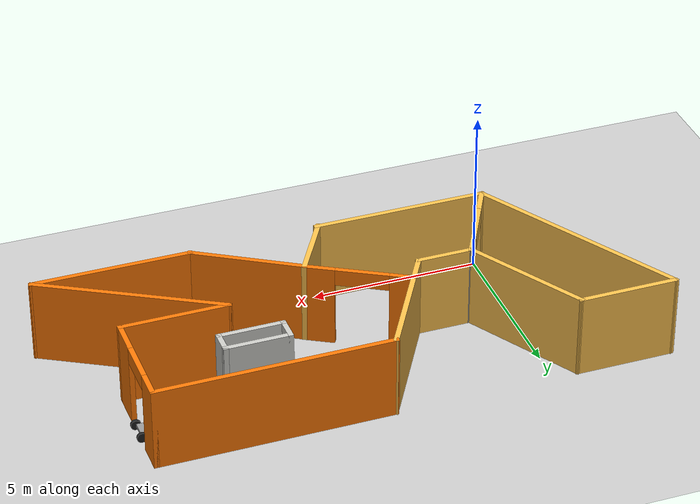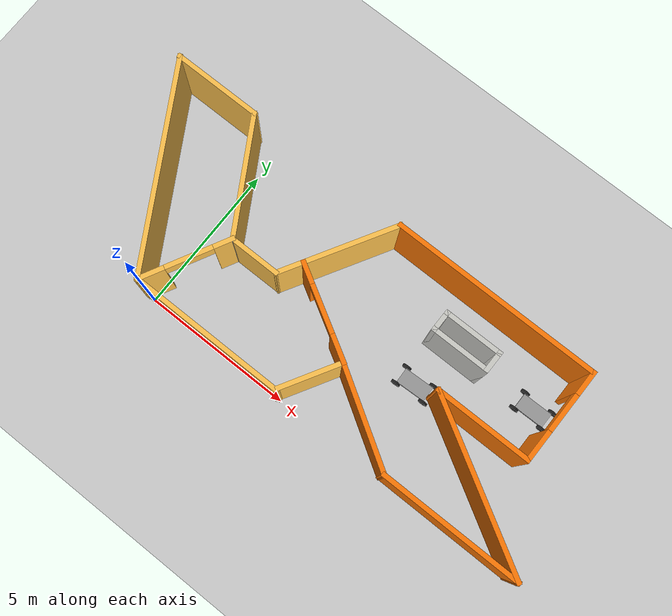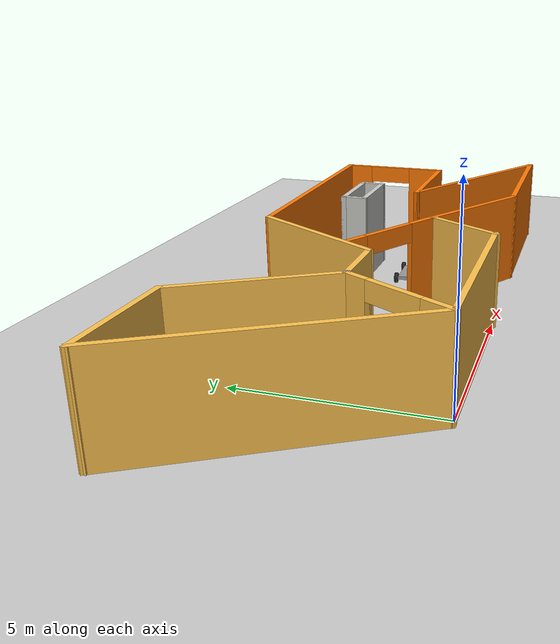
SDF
<sdf version="1.6">
 <world name="default">
  <model name="ground_plane">
   <pose>0 0 0 0 -0 0.3</pose>
   <static>1</static>
   <link name="link">
    <collision name="collision">
     <geometry><plane><normal>0 0 1</normal><size>100 100</size></plane></geometry>
     <surface>
      <contact><collide_bitmask>65535</collide_bitmask></contact>
      <friction><ode><mu>100</mu><mu2>50</mu2></ode></friction>
     </surface>
    </collision>
    <visual name="visual">
     <cast_shadows>0</cast_shadows>
     <geometry><plane><normal>0 0 1</normal><size>100 100</size></plane></geometry>
     <material>
      <script><uri>file://media/materials/scripts/gazebo.material</uri><name>Gazebo/Grey</name></script>
     </material>
    </visual>
   </link>
  </model>
  <model name="model">
   <pose>4.86441 3.63038 0 0 -0 0</pose>
   <link name="Wall_1">
    <collision name="Wall_1_Collision">
     <geometry><box><size>3 0.15 2.5</size></box></geometry>
     <pose>0 0 1.25 0 -0 0</pose>
    </collision>
    <visual name="Wall_1_Visual">
     <pose>0 0 1.25 0 -0 0</pose>
     <geometry><box><size>3 0.15 2.5</size></box></geometry>
     <material>
      <script><uri>file://media/materials/scripts/gazebo.material</uri><name>Gazebo/Grey</name></script>
      <ambient>1 0.764706 0.305882 1</ambient>
     </material>
     <meta><layer>0</layer></meta>
    </visual>
    <pose>-7.02494 2.33089 0 0 -0 0</pose>
   </link>
   <link name="Wall_10">
    <collision name="Wall_10_Collision">
     <geometry><box><size>3.45374 0.15 2.5</size></box></geometry>
     <pose>0 0 1.25 0 -0 0</pose>
    </collision>
    <visual name="Wall_10_Visual">
     <pose>0 0 1.25 0 -0 0</pose>
     <geometry><box><size>3.45374 0.15 2.5</size></box></geometry>
     <material>
      <script><uri>file://media/materials/scripts/gazebo.material</uri><name>Gazebo/Grey</name></script>
      <ambient>0.996078 0.47451 0.0196078 1</ambient>
     </material>
     <meta><layer>0</layer></meta>
    </visual>
    <pose>2.44495 -2.70017 0 0 -0 2.58766</pose>
   </link>
   <link name="Wall_11">
    <collision name="Wall_11_Collision">
     <geometry><box><size>2.25 0.15 2.5</size></box></geometry>
     <pose>0 0 1.25 0 -0 0</pose>
    </collision>
    <visual name="Wall_11_Visual">
     <pose>0 0 1.25 0 -0 0</pose>
     <geometry><box><size>2.25 0.15 2.5</size></box></geometry>
     <material>
      <script><uri>file://media/materials/scripts/gazebo.material</uri><name>Gazebo/Grey</name></script>
      <ambient>1 0.764706 0.305882 1</ambient>
     </material>
     <meta><layer>0</layer></meta>
    </visual>
    <pose>0.5151 -2.72911 0 0 -0 -2.0944</pose>
   </link>
   <link name="Wall_2">
    <collision name="Wall_2_Collision">
     <geometry><box><size>4 0.15 2.5</size></box></geometry>
     <pose>0 0 1.25 0 -0 0</pose>
    </collision>
    <visual name="Wall_2_Visual">
     <pose>0 0 1.25 0 -0 0</pose>
     <geometry><box><size>4 0.15 2.5</size></box></geometry>
     <material>
      <script><uri>file://media/materials/scripts/gazebo.material</uri><name>Gazebo/Grey</name></script>
      <ambient>1 0.764706 0.305882 1</ambient>
     </material>
     <meta><layer>0</layer></meta>
    </visual>
    <pose>-4.63744 0.66379 0 0 -0 -1.0472</pose>
   </link>
   <link name="Wall_20">
    <collision name="Wall_20_Collision">
     <geometry><box><size>6.98788 0.15 2.5</size></box></geometry>
     <pose>0 0 1.25 0 -0 0</pose>
    </collision>
    <visual name="Wall_20_Visual">
     <pose>0 0 1.25 0 -0 0</pose>
     <geometry><box><size>6.98788 0.15 2.5</size></box></geometry>
     <material>
      <script><uri>file://media/materials/scripts/gazebo.material</uri><name>Gazebo/Grey</name></script>
      <ambient>1 0.764706 0.305882 1</ambient>
     </material>
     <meta><layer>0</layer></meta>
    </visual>
    <pose>-6.75459 -0.638107 0 0 -0 -1.05196</pose>
   </link>
   <link name="Wall_21">
    <collision name="Wall_21_Collision">
     <geometry><box><size>5.25 0.15 2.5</size></box></geometry>
     <pose>0 0 1.25 0 -0 0</pose>
    </collision>
    <visual name="Wall_21_Visual">
     <pose>0 0 1.25 0 -0 0</pose>
     <geometry><box><size>5.25 0.15 2.5</size></box></geometry>
     <material>
      <script><uri>file://media/materials/scripts/gazebo.material</uri><name>Gazebo/Grey</name></script>
      <ambient>1 0.764706 0.305882 1</ambient>
     </material>
     <meta><layer>0</layer></meta>
    </visual>
    <pose>-2.49781 -3.6071 0 0 -0 0</pose>
   </link>
   <link name="Wall_23">
    <collision name="Wall_23_Collision">
     <geometry><box><size>2 0.15 2.5</size></box></geometry>
     <pose>0 0 1.25 0 -0 0</pose>
    </collision>
    <visual name="Wall_23_Visual">
     <pose>0 0 1.25 0 -0 0</pose>
     <geometry><box><size>2 0.15 2.5</size></box></geometry>
     <material>
      <script><uri>file://media/materials/scripts/gazebo.material</uri><name>Gazebo/CeilingTiled</name></script>
      <ambient>0.435294 0.796078 0.67451 1</ambient>
     </material>
     <meta><layer>0</layer></meta>
    </visual>
    <pose>3.37989 1.12451 0 0 -0 3.14159</pose>
   </link>
   <link name="Wall_24">
    <collision name="Wall_24_Collision">
     <geometry><box><size>0.75 0.15 2.5</size></box></geometry>
     <pose>0 0 1.25 0 -0 0</pose>
    </collision>
    <visual name="Wall_24_Visual">
     <pose>0 0 1.25 0 -0 0</pose>
     <geometry><box><size>0.75 0.15 2.5</size></box></geometry>
     <material>
      <script><uri>file://media/materials/scripts/gazebo.material</uri><name>Gazebo/CeilingTiled</name></script>
      <ambient>0.435294 0.796078 0.67451 1</ambient>
     </material>
     <meta><layer>0</layer></meta>
    </visual>
    <pose>2.45489 0.824511 0 0 -0 -1.5708</pose>
   </link>
   <link name="Wall_25">
    <collision name="Wall_25_Collision">
     <geometry><box><size>2 0.15 2.5</size></box></geometry>
     <pose>0 0 1.25 0 -0 0</pose>
    </collision>
    <visual name="Wall_25_Visual">
     <pose>0 0 1.25 0 -0 0</pose>
     <geometry><box><size>2 0.15 2.5</size></box></geometry>
     <material>
      <script><uri>file://media/materials/scripts/gazebo.material</uri><name>Gazebo/CeilingTiled</name></script>
      <ambient>0.435294 0.796078 0.67451 1</ambient>
     </material>
     <meta><layer>0</layer></meta>
    </visual>
    <pose>3.37989 0.524511 0 0 -0 0</pose>
   </link>
   <link name="Wall_26">
    <collision name="Wall_26_Collision">
     <geometry><box><size>0.75 0.15 2.5</size></box></geometry>
     <pose>0 0 1.25 0 -0 0</pose>
    </collision>
    <visual name="Wall_26_Visual">
     <pose>0 0 1.25 0 -0 0</pose>
     <geometry><box><size>0.75 0.15 2.5</size></box></geometry>
     <material>
      <script><uri>file://media/materials/scripts/gazebo.material</uri><name>Gazebo/CeilingTiled</name></script>
      <ambient>0.435294 0.796078 0.67451 1</ambient>
     </material>
     <meta><layer>0</layer></meta>
    </visual>
    <pose>4.30489 0.824511 0 0 -0 1.5708</pose>
   </link>
   <link name="Wall_28">
    <collision name="Wall_28_Collision">
     <geometry><box><size>0.15 0.15 2.5</size></box></geometry>
     <pose>0 0 1.25 0 -0 0</pose>
    </collision>
    <visual name="Wall_28_Visual">
     <pose>0 0 1.25 0 -0 0</pose>
     <geometry><box><size>0.15 0.15 2.5</size></box></geometry>
     <material>
      <script><uri>file://media/materials/scripts/gazebo.material</uri><name>Gazebo/Grey</name></script>
      <ambient>1 1 1 1</ambient>
     </material>
     <meta><layer>0</layer></meta>
    </visual>
    <pose>-3.67494 -1.00331 0 0 -0 0</pose>
   </link>
   <link name="Wall_29">
    <pose>-4.36137 -2.30521 0 0 -0 -2.05601</pose>
    <visual name="Wall_29_Visual_0">
     <pose>-1.20446 0 1.25 0 -0 0</pose>
     <geometry><box><size>0.684636 0.15 2.5</size></box></geometry>
     <material>
      <script><uri>file://media/materials/scripts/gazebo.material</uri><name>Gazebo/Grey</name></script>
      <ambient>1 0.764706 0.305882 1</ambient>
     </material>
     <meta><layer>0</layer></meta>
    </visual>
    <collision name="Wall_29_Collision_0">
     <geometry><box><size>0.684636 0.15 2.5</size></box></geometry>
     <pose>-1.20446 0 1.25 0 -0 0</pose>
    </collision>
    <visual name="Wall_29_Visual_1">
     <pose>1.09942 0 1.25 0 -0 0</pose>
     <geometry><box><size>0.894721 0.15 2.5</size></box></geometry>
     <material>
      <script><uri>file://media/materials/scripts/gazebo.material</uri><name>Gazebo/Grey</name></script>
      <ambient>1 0.764706 0.305882 1</ambient>
     </material>
     <meta><layer>0</layer></meta>
    </visual>
    <collision name="Wall_29_Collision_1">
     <geometry><box><size>0.894721 0.15 2.5</size></box></geometry>
     <pose>1.09942 0 1.25 0 -0 0</pose>
    </collision>
    <visual name="Wall_29_Visual_2">
     <pose>-0.105042 0 2.25 0 -0 0</pose>
     <geometry><box><size>1.5142 0.15 0.5</size></box></geometry>
     <material>
      <script><uri>file://media/materials/scripts/gazebo.material</uri><name>Gazebo/Grey</name></script>
      <ambient>1 0.764706 0.305882 1</ambient>
     </material>
     <meta><layer>0</layer></meta>
    </visual>
    <collision name="Wall_29_Collision_2">
     <geometry><box><size>1.5142 0.15 0.5</size></box></geometry>
     <pose>-0.105042 0 2.25 0 -0 0</pose>
    </collision>
   </link>
   <link name="Wall_3">
    <collision name="Wall_3_Collision">
     <geometry><box><size>1.75 0.15 2.5</size></box></geometry>
     <pose>0 0 1.25 0 -0 0</pose>
    </collision>
    <visual name="Wall_3_Visual">
     <pose>0 0 1.25 0 -0 0</pose>
     <geometry><box><size>1.75 0.15 2.5</size></box></geometry>
     <material>
      <script><uri>file://media/materials/scripts/gazebo.material</uri><name>Gazebo/Grey</name></script>
      <ambient>1 0.764706 0.305882 1</ambient>
     </material>
     <meta><layer>0</layer></meta>
    </visual>
    <pose>-2.87494 -1.00331 0 0 -0 0</pose>
   </link>
   <link name="Wall_32">
    <pose>-0.302239 -1.04478 0 0 -0 2.61799</pose>
    <visual name="Wall_32_Visual_0">
     <pose>-1.15002 0 1.25 0 -0 0</pose>
     <geometry><box><size>0.949952 0.15 2.5</size></box></geometry>
     <material>
      <script><uri>file://media/materials/scripts/gazebo.material</uri><name>Gazebo/Grey</name></script>
      <ambient>0.996078 0.47451 0.0196078 1</ambient>
     </material>
     <meta><layer>0</layer></meta>
    </visual>
    <collision name="Wall_32_Collision_0">
     <geometry><box><size>0.949952 0.15 2.5</size></box></geometry>
     <pose>-1.15002 0 1.25 0 -0 0</pose>
    </collision>
    <visual name="Wall_32_Visual_1">
     <pose>1.24923 0 1.25 0 -0 0</pose>
     <geometry><box><size>0.751532 0.15 2.5</size></box></geometry>
     <material>
      <script><uri>file://media/materials/scripts/gazebo.material</uri><name>Gazebo/Grey</name></script>
      <ambient>0.996078 0.47451 0.0196078 1</ambient>
     </material>
     <meta><layer>0</layer></meta>
    </visual>
    <collision name="Wall_32_Collision_1">
     <geometry><box><size>0.751532 0.15 2.5</size></box></geometry>
     <pose>1.24923 0 1.25 0 -0 0</pose>
    </collision>
    <visual name="Wall_32_Visual_2">
     <pose>0.09921 0 2.25 0 -0 0</pose>
     <geometry><box><size>1.54852 0.15 0.5</size></box></geometry>
     <material>
      <script><uri>file://media/materials/scripts/gazebo.material</uri><name>Gazebo/Grey</name></script>
      <ambient>0.996078 0.47451 0.0196078 1</ambient>
     </material>
     <meta><layer>0</layer></meta>
    </visual>
    <collision name="Wall_32_Collision_2">
     <geometry><box><size>1.54852 0.15 0.5</size></box></geometry>
     <pose>0.09921 0 2.25 0 -0 0</pose>
    </collision>
   </link>
   <link name="Wall_4">
    <collision name="Wall_4_Collision">
     <geometry><box><size>4 0.15 2.5</size></box></geometry>
     <pose>0 0 1.25 0 -0 0</pose>
    </collision>
    <visual name="Wall_4_Visual">
     <pose>0 0 1.25 0 -0 0</pose>
     <geometry><box><size>4 0.15 2.5</size></box></geometry>
     <material>
      <script><uri>file://media/materials/scripts/gazebo.material</uri><name>Gazebo/Grey</name></script>
      <ambient>1 0.764706 0.305882 1</ambient>
     </material>
     <meta><layer>0</layer></meta>
    </visual>
    <pose>-1.11244 0.66379 0 0 -0 1.0472</pose>
   </link>
   <link name="Wall_5">
    <collision name="Wall_5_Collision">
     <geometry><box><size>7 0.15 2.5</size></box></geometry>
     <pose>0 0 1.25 0 -0 0</pose>
    </collision>
    <visual name="Wall_5_Visual">
     <pose>0 0 1.25 0 -0 0</pose>
     <geometry><box><size>7 0.15 2.5</size></box></geometry>
     <material>
      <script><uri>file://media/materials/scripts/gazebo.material</uri><name>Gazebo/Grey</name></script>
      <ambient>0.996078 0.47451 0.0196078 1</ambient>
     </material>
     <meta><layer>0</layer></meta>
    </visual>
    <pose>3.27506 2.33089 0 0 -0 0</pose>
   </link>
   <link name="Wall_6">
    <pose>6.70006 0.780889 0 0 -0 -1.5708</pose>
    <visual name="Wall_6_Visual_0">
     <pose>-1.19377 0 1.25 0 -0 0</pose>
     <geometry><box><size>0.862464 0.15 2.5</size></box></geometry>
     <material>
      <script><uri>file://media/materials/scripts/gazebo.material</uri><name>Gazebo/Grey</name></script>
      <ambient>0.996078 0.47451 0.0196078 1</ambient>
     </material>
     <meta><layer>0</layer></meta>
    </visual>
    <collision name="Wall_6_Collision_0">
     <geometry><box><size>0.862464 0.15 2.5</size></box></geometry>
     <pose>-1.19377 0 1.25 0 -0 0</pose>
    </collision>
    <visual name="Wall_6_Visual_1">
     <pose>1.07673 0 1.25 0 -0 0</pose>
     <geometry><box><size>1.09654 0.15 2.5</size></box></geometry>
     <material>
      <script><uri>file://media/materials/scripts/gazebo.material</uri><name>Gazebo/Grey</name></script>
      <ambient>0.996078 0.47451 0.0196078 1</ambient>
     </material>
     <meta><layer>0</layer></meta>
    </visual>
    <collision name="Wall_6_Collision_1">
     <geometry><box><size>1.09654 0.15 2.5</size></box></geometry>
     <pose>1.07673 0 1.25 0 -0 0</pose>
    </collision>
    <visual name="Wall_6_Visual_2">
     <pose>-0.117036 0 2.25 0 -0 0</pose>
     <geometry><box><size>1.291 0.15 0.5</size></box></geometry>
     <material>
      <script><uri>file://media/materials/scripts/gazebo.material</uri><name>Gazebo/Grey</name></script>
      <ambient>0.996078 0.47451 0.0196078 1</ambient>
     </material>
     <meta><layer>0</layer></meta>
    </visual>
    <collision name="Wall_6_Collision_2">
     <geometry><box><size>1.291 0.15 0.5</size></box></geometry>
     <pose>-0.117036 0 2.25 0 -0 0</pose>
    </collision>
   </link>
   <link name="Wall_7">
    <collision name="Wall_7_Collision">
     <geometry><box><size>3.25 0.15 2.5</size></box></geometry>
     <pose>0 0 1.25 0 -0 0</pose>
    </collision>
    <visual name="Wall_7_Visual">
     <pose>0 0 1.25 0 -0 0</pose>
     <geometry><box><size>3.25 0.15 2.5</size></box></geometry>
     <material>
      <script><uri>file://media/materials/scripts/gazebo.material</uri><name>Gazebo/Grey</name></script>
      <ambient>0.996078 0.47451 0.0196078 1</ambient>
     </material>
     <meta><layer>0</layer></meta>
    </visual>
    <pose>5.15006 -0.769112 0 0 -0 3.14159</pose>
   </link>
   <link name="Wall_8">
    <collision name="Wall_8_Collision">
     <geometry><box><size>5.75 0.15 2.5</size></box></geometry>
     <pose>0 0 1.25 0 -0 0</pose>
    </collision>
    <visual name="Wall_8_Visual">
     <pose>0 0 1.25 0 -0 0</pose>
     <geometry><box><size>5.75 0.15 2.5</size></box></geometry>
     <material>
      <script><uri>file://media/materials/scripts/gazebo.material</uri><name>Gazebo/Grey</name></script>
      <ambient>0.996078 0.47451 0.0196078 1</ambient>
     </material>
     <meta><layer>0</layer></meta>
    </visual>
    <pose>6.02493 -2.16911 0 0 -0 -0.523599</pose>
   </link>
   <link name="Wall_9">
    <collision name="Wall_9_Collision">
     <geometry><box><size>4.75 0.15 2.5</size></box></geometry>
     <pose>0 0 1.25 0 -0 0</pose>
    </collision>
    <visual name="Wall_9_Visual">
     <pose>0 0 1.25 0 -0 0</pose>
     <geometry><box><size>4.75 0.15 2.5</size></box></geometry>
     <material>
      <script><uri>file://media/materials/scripts/gazebo.material</uri><name>Gazebo/Grey</name></script>
      <ambient>0.996078 0.47451 0.0196078 1</ambient>
     </material>
     <meta><layer>0</layer></meta>
    </visual>
    <pose>6.1498 -3.56911 0 0 -0 3.14159</pose>
   </link>
   <static>1</static>
  </model>
  <model name="model_1">
   <model name="cart_front_steer">
    <link name="chassis">
     <pose>0 0 0.15 0 -0 0</pose>
     <inertial>
      <pose>0.1 0 0 0 -0 0</pose>
      <mass>10</mass>
      <inertia>
       <ixx>0.216667</ixx>
       <iyy>0.841667</iyy>
       <izz>1.04167</izz>
       <ixy>0</ixy>
       <ixz>0</ixz>
       <iyz>0</iyz>
      </inertia>
     </inertial>
     <collision name="collision"><geometry><box><size>1 0.5 0.1</size></box></geometry></collision>
     <visual name="visual">
      <geometry><box><size>1 0.5 0.1</size></box></geometry>
      <material>
       <script><uri>file://media/materials/scripts/gazebo.material</uri><name>Gazebo/Grey</name></script>
      </material>
     </visual>
    </link>
    <link name="wheel_front_left">
     <pose>0.5 0.298 0.15 -1.5708 -0.087266 0</pose>
     <inertial>
      <mass>0.5</mass>
      <inertia>
       <ixx>0.00307917</ixx>
       <iyy>0.00307917</iyy>
       <izz>0.005625</izz>
       <ixy>0</ixy>
       <ixz>0</ixz>
       <iyz>0</iyz>
      </inertia>
     </inertial>
     <collision name="collision">
      <geometry><cylinder><radius>0.15</radius><length>0.08</length></cylinder></geometry>
     </collision>
     <visual name="visual">
      <geometry><cylinder><radius>0.15</radius><length>0.08</length></cylinder></geometry>
      <material>
       <script><uri>file://media/materials/scripts/gazebo.material</uri><name>Gazebo/Black</name></script>
      </material>
     </visual>
    </link>
    <joint name="wheel_front_left_steer_spin" type="universal">
     <parent>chassis</parent>
     <child>wheel_front_left</child>
     <axis>
      <xyz>0 -1 0</xyz>
      <limit><lower>-0.610865</lower><upper>0.610865</upper></limit>
      <dynamics><spring_reference>0</spring_reference><spring_stiffness>0</spring_stiffness></dynamics>
      <use_parent_model_frame>0</use_parent_model_frame>
     </axis>
     <axis2>
      <xyz>0 0 1</xyz>
      <limit><upper>1e+16</upper><lower>-1e+16</lower></limit>
      <dynamics><spring_reference>0</spring_reference><spring_stiffness>0</spring_stiffness></dynamics>
      <use_parent_model_frame>0</use_parent_model_frame>
     </axis2>
    </joint>
    <link name="wheel_front_right">
     <pose>0.5 -0.298 0.15 -1.5708 -0.087266 0</pose>
     <inertial>
      <mass>0.5</mass>
      <inertia>
       <ixx>0.00307917</ixx>
       <iyy>0.00307917</iyy>
       <izz>0.005625</izz>
       <ixy>0</ixy>
       <ixz>0</ixz>
       <iyz>0</iyz>
      </inertia>
     </inertial>
     <collision name="collision">
      <geometry><cylinder><radius>0.15</radius><length>0.08</length></cylinder></geometry>
     </collision>
     <visual name="visual">
      <geometry><cylinder><radius>0.15</radius><length>0.08</length></cylinder></geometry>
      <material>
       <script><uri>file://media/materials/scripts/gazebo.material</uri><name>Gazebo/Black</name></script>
      </material>
     </visual>
    </link>
    <joint name="wheel_front_right_steer_spin" type="universal">
     <parent>chassis</parent>
     <child>wheel_front_right</child>
     <axis>
      <xyz>0 -1 0</xyz>
      <limit><lower>-0.610865</lower><upper>0.610865</upper></limit>
      <dynamics><spring_reference>0</spring_reference><spring_stiffness>0</spring_stiffness></dynamics>
      <use_parent_model_frame>0</use_parent_model_frame>
     </axis>
     <axis2>
      <xyz>0 0 1</xyz>
      <limit><upper>1e+16</upper><lower>-1e+16</lower></limit>
      <dynamics><spring_reference>0</spring_reference><spring_stiffness>0</spring_stiffness></dynamics>
      <use_parent_model_frame>0</use_parent_model_frame>
     </axis2>
    </joint>
    <link name="wheel_rear_left">
     <pose>-0.5 0.298 0.15 -1.5708 0 0</pose>
     <inertial>
      <mass>0.5</mass>
      <inertia>
       <ixx>0.00307917</ixx>
       <iyy>0.00307917</iyy>
       <izz>0.005625</izz>
       <ixy>0</ixy>
       <ixz>0</ixz>
       <iyz>0</iyz>
      </inertia>
     </inertial>
     <collision name="collision">
      <geometry><cylinder><radius>0.15</radius><length>0.08</length></cylinder></geometry>
     </collision>
     <visual name="visual">
      <geometry><cylinder><radius>0.15</radius><length>0.08</length></cylinder></geometry>
      <material>
       <script><uri>file://media/materials/scripts/gazebo.material</uri><name>Gazebo/Black</name></script>
      </material>
     </visual>
    </link>
    <joint name="wheel_rear_left_spin" type="revolute">
     <parent>chassis</parent>
     <child>wheel_rear_left</child>
     <axis>
      <xyz>0 0 1</xyz>
      <limit><lower>-1e+16</lower><upper>1e+16</upper></limit>
      <dynamics><spring_reference>0</spring_reference><spring_stiffness>0</spring_stiffness></dynamics>
      <use_parent_model_frame>0</use_parent_model_frame>
     </axis>
    </joint>
    <link name="wheel_rear_right">
     <pose>-0.5 -0.298 0.15 -1.5708 0 0</pose>
     <inertial>
      <mass>0.5</mass>
      <inertia>
       <ixx>0.00307917</ixx>
       <iyy>0.00307917</iyy>
       <izz>0.005625</izz>
       <ixy>0</ixy>
       <ixz>0</ixz>
       <iyz>0</iyz>
      </inertia>
     </inertial>
     <collision name="collision">
      <geometry><cylinder><radius>0.15</radius><length>0.08</length></cylinder></geometry>
     </collision>
     <visual name="visual">
      <geometry><cylinder><radius>0.15</radius><length>0.08</length></cylinder></geometry>
      <material>
       <script><uri>file://media/materials/scripts/gazebo.material</uri><name>Gazebo/Black</name></script>
      </material>
     </visual>
    </link>
    <joint name="wheel_rear_right_spin" type="revolute">
     <parent>chassis</parent>
     <child>wheel_rear_right</child>
     <axis>
      <xyz>0 0 1</xyz>
      <limit><lower>-1e+16</lower><upper>1e+16</upper></limit>
      <dynamics><spring_reference>0</spring_reference><spring_stiffness>0</spring_stiffness></dynamics>
      <use_parent_model_frame>0</use_parent_model_frame>
     </axis>
    </joint>
    <pose>-1.06061 0.576576 0 0 -0 0</pose>
   </model>
   <static>0</static>
   <allow_auto_disable>0</allow_auto_disable>
   <pose>8.94203 2.37104 8e-06 -1.6e-05 -1e-06 0.04098</pose>
  </model>
  <model name="model_0">
   <model name="cart_front_steer">
    <link name="chassis">
     <pose>0 0 0.15 0 -0 0</pose>
     <inertial>
      <pose>0.1 0 0 0 -0 0</pose>
      <mass>10</mass>
      <inertia>
       <ixx>0.216667</ixx>
       <iyy>0.841667</iyy>
       <izz>1.04167</izz>
       <ixy>0</ixy>
       <ixz>0</ixz>
       <iyz>0</iyz>
      </inertia>
     </inertial>
     <collision name="collision"><geometry><box><size>1 0.5 0.1</size></box></geometry></collision>
     <visual name="visual">
      <geometry><box><size>1 0.5 0.1</size></box></geometry>
      <material>
       <script><uri>file://media/materials/scripts/gazebo.material</uri><name>Gazebo/Grey</name></script>
      </material>
     </visual>
    </link>
    <link name="wheel_front_left">
     <pose>0.5 0.298 0.15 -1.5708 -0.087266 0</pose>
     <inertial>
      <mass>0.5</mass>
      <inertia>
       <ixx>0.00307917</ixx>
       <iyy>0.00307917</iyy>
       <izz>0.005625</izz>
       <ixy>0</ixy>
       <ixz>0</ixz>
       <iyz>0</iyz>
      </inertia>
     </inertial>
     <collision name="collision">
      <geometry><cylinder><radius>0.15</radius><length>0.08</length></cylinder></geometry>
     </collision>
     <visual name="visual">
      <geometry><cylinder><radius>0.15</radius><length>0.08</length></cylinder></geometry>
      <material>
       <script><uri>file://media/materials/scripts/gazebo.material</uri><name>Gazebo/Black</name></script>
      </material>
     </visual>
    </link>
    <joint name="wheel_front_left_steer_spin" type="universal">
     <parent>chassis</parent>
     <child>wheel_front_left</child>
     <axis>
      <xyz>0 -1 0</xyz>
      <limit><lower>-0.610865</lower><upper>0.610865</upper></limit>
      <dynamics><spring_reference>0</spring_reference><spring_stiffness>0</spring_stiffness></dynamics>
      <use_parent_model_frame>0</use_parent_model_frame>
     </axis>
     <axis2>
      <xyz>0 0 1</xyz>
      <limit><upper>1e+16</upper><lower>-1e+16</lower></limit>
      <dynamics><spring_reference>0</spring_reference><spring_stiffness>0</spring_stiffness></dynamics>
      <use_parent_model_frame>0</use_parent_model_frame>
     </axis2>
    </joint>
    <link name="wheel_front_right">
     <pose>0.5 -0.298 0.15 -1.5708 -0.087266 0</pose>
     <inertial>
      <mass>0.5</mass>
      <inertia>
       <ixx>0.00307917</ixx>
       <iyy>0.00307917</iyy>
       <izz>0.005625</izz>
       <ixy>0</ixy>
       <ixz>0</ixz>
       <iyz>0</iyz>
      </inertia>
     </inertial>
     <collision name="collision">
      <geometry><cylinder><radius>0.15</radius><length>0.08</length></cylinder></geometry>
     </collision>
     <visual name="visual">
      <geometry><cylinder><radius>0.15</radius><length>0.08</length></cylinder></geometry>
      <material>
       <script><uri>file://media/materials/scripts/gazebo.material</uri><name>Gazebo/Black</name></script>
      </material>
     </visual>
    </link>
    <joint name="wheel_front_right_steer_spin" type="universal">
     <parent>chassis</parent>
     <child>wheel_front_right</child>
     <axis>
      <xyz>0 -1 0</xyz>
      <limit><lower>-0.610865</lower><upper>0.610865</upper></limit>
      <dynamics><spring_reference>0</spring_reference><spring_stiffness>0</spring_stiffness></dynamics>
      <use_parent_model_frame>0</use_parent_model_frame>
     </axis>
     <axis2>
      <xyz>0 0 1</xyz>
      <limit><upper>1e+16</upper><lower>-1e+16</lower></limit>
      <dynamics><spring_reference>0</spring_reference><spring_stiffness>0</spring_stiffness></dynamics>
      <use_parent_model_frame>0</use_parent_model_frame>
     </axis2>
    </joint>
    <link name="wheel_rear_left">
     <pose>-0.5 0.298 0.15 -1.5708 0 0</pose>
     <inertial>
      <mass>0.5</mass>
      <inertia>
       <ixx>0.00307917</ixx>
       <iyy>0.00307917</iyy>
       <izz>0.005625</izz>
       <ixy>0</ixy>
       <ixz>0</ixz>
       <iyz>0</iyz>
      </inertia>
     </inertial>
     <collision name="collision">
      <geometry><cylinder><radius>0.15</radius><length>0.08</length></cylinder></geometry>
     </collision>
     <visual name="visual">
      <geometry><cylinder><radius>0.15</radius><length>0.08</length></cylinder></geometry>
      <material>
       <script><uri>file://media/materials/scripts/gazebo.material</uri><name>Gazebo/Black</name></script>
      </material>
     </visual>
    </link>
    <joint name="wheel_rear_left_spin" type="revolute">
     <parent>chassis</parent>
     <child>wheel_rear_left</child>
     <axis>
      <xyz>0 0 1</xyz>
      <limit><lower>-1e+16</lower><upper>1e+16</upper></limit>
      <dynamics><spring_reference>0</spring_reference><spring_stiffness>0</spring_stiffness></dynamics>
      <use_parent_model_frame>0</use_parent_model_frame>
     </axis>
    </joint>
    <link name="wheel_rear_right">
     <pose>-0.5 -0.298 0.15 -1.5708 0 0</pose>
     <inertial>
      <mass>0.5</mass>
      <inertia>
       <ixx>0.00307917</ixx>
       <iyy>0.00307917</iyy>
       <izz>0.005625</izz>
       <ixy>0</ixy>
       <ixz>0</ixz>
       <iyz>0</iyz>
      </inertia>
     </inertial>
     <collision name="collision">
      <geometry><cylinder><radius>0.15</radius><length>0.08</length></cylinder></geometry>
     </collision>
     <visual name="visual">
      <geometry><cylinder><radius>0.15</radius><length>0.08</length></cylinder></geometry>
      <material>
       <script><uri>file://media/materials/scripts/gazebo.material</uri><name>Gazebo/Black</name></script>
      </material>
     </visual>
    </link>
    <joint name="wheel_rear_right_spin" type="revolute">
     <parent>chassis</parent>
     <child>wheel_rear_right</child>
     <axis>
      <xyz>0 0 1</xyz>
      <limit><lower>-1e+16</lower><upper>1e+16</upper></limit>
      <dynamics><spring_reference>0</spring_reference><spring_stiffness>0</spring_stiffness></dynamics>
      <use_parent_model_frame>0</use_parent_model_frame>
     </axis>
    </joint>
    <pose>-1.06061 0.576576 0 0 -0 0</pose>
   </model>
   <static>0</static>
   <allow_auto_disable>0</allow_auto_disable>
   <pose>12.1843 3.93787 3e-06 -1e-06 -1e-06 0.008561</pose>
  </model>
 </world>
</sdf>
